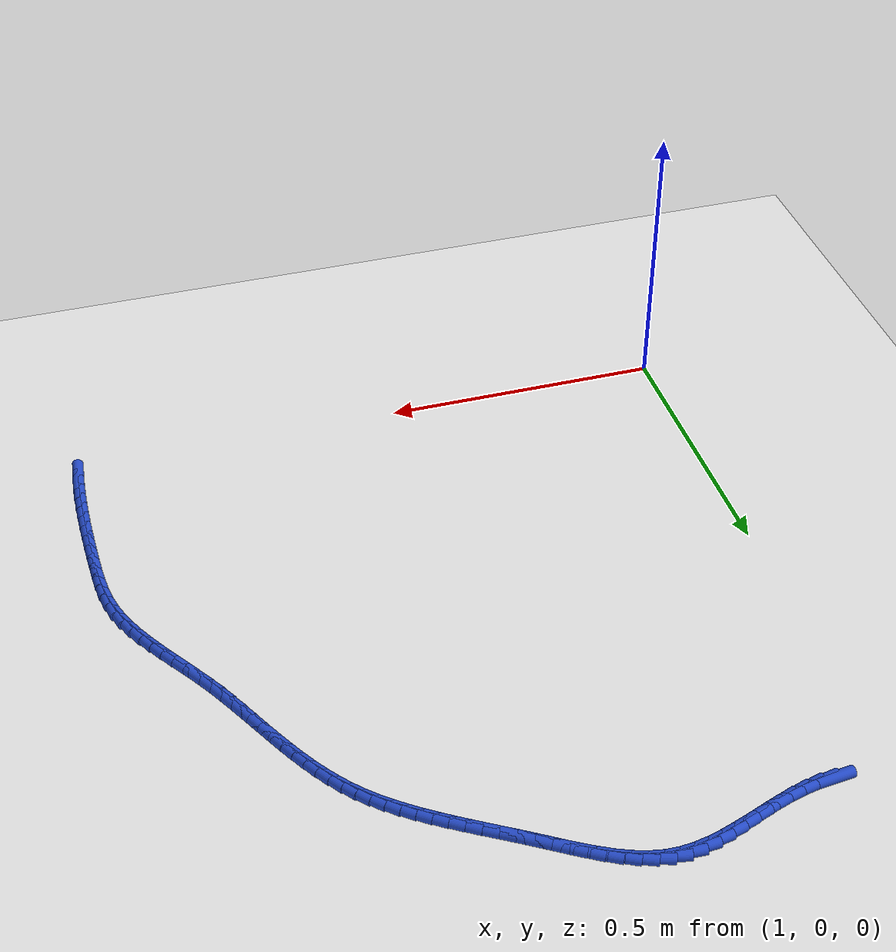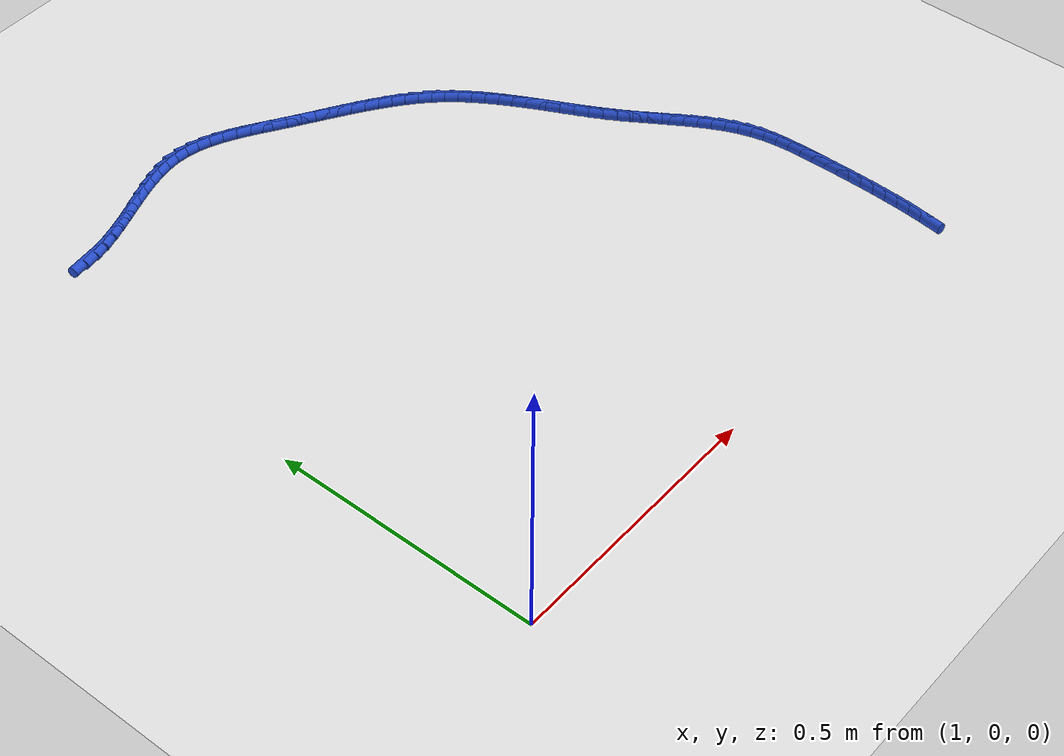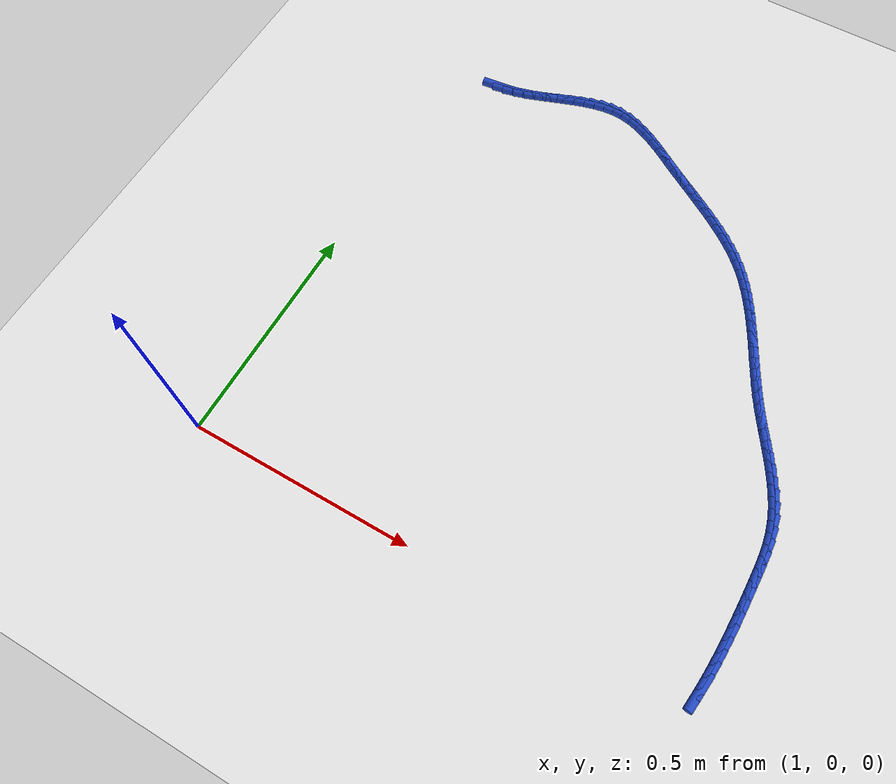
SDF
<sdf version="1.6">
 <world name="default">
  <model name="ground_plane">
   <static>1</static>
   <link name="link">
    <collision name="collision">
     <geometry><plane><normal>0 0 1</normal><size>100 100</size></plane></geometry>
     <surface><friction><ode><mu>100</mu><mu2>50</mu2></ode></friction></surface>
    </collision>
    <visual name="visual">
     <cast_shadows>0</cast_shadows>
     <geometry><plane><normal>0 0 1</normal><size>100 100</size></plane></geometry>
     <material>
      <script><uri>file://media/materials/scripts/gazebo.material</uri><name>Gazebo/WhiteGlow</name></script>
     </material>
    </visual>
   </link>
  </model>
  <model name="line">
   <link name="link_68">
    <pose>1.1064131514213038 1.0565954860298754 0.01 0 1.57 0.10568974941991985</pose>
    <collision name="collision">
     <geometry><cylinder><radius>0.01</radius><length>0.08</length></cylinder></geometry>
    </collision>
    <visual name="visual">
     <material>
      <script><name>Gazebo/Blue</name><uri>file://media/materials/scripts/gazebo.material</uri></script>
     </material>
     <geometry><cylinder><radius>0.01</radius><length>0.08</length></cylinder></geometry>
    </visual>
   </link>
   <link name="link_69">
    <pose>1.1314996799015065 1.0592567915400655 0.01 0 1.57 0.19799500992161104</pose>
    <collision name="collision">
     <geometry><cylinder><radius>0.01</radius><length>0.08</length></cylinder></geometry>
    </collision>
    <visual name="visual">
     <material>
      <script><name>Gazebo/Blue</name><uri>file://media/materials/scripts/gazebo.material</uri></script>
     </material>
     <geometry><cylinder><radius>0.01</radius><length>0.08</length></cylinder></geometry>
    </visual>
   </link>
   <link name="link_70">
    <pose>1.1565789983415005 1.064288292255868 0.01 0 1.57 0.26721346325326883</pose>
    <collision name="collision">
     <geometry><cylinder><radius>0.01</radius><length>0.08</length></cylinder></geometry>
    </collision>
    <visual name="visual">
     <material>
      <script><name>Gazebo/Blue</name><uri>file://media/materials/scripts/gazebo.material</uri></script>
     </material>
     <geometry><cylinder><radius>0.01</radius><length>0.08</length></cylinder></geometry>
    </visual>
   </link>
   <link name="link_71">
    <pose>1.1816277866555522 1.0711456602724558 0.01 0 1.57 0.31471692116318645</pose>
    <collision name="collision">
     <geometry><cylinder><radius>0.01</radius><length>0.08</length></cylinder></geometry>
    </collision>
    <visual name="visual">
     <material>
      <script><name>Gazebo/Blue</name><uri>file://media/materials/scripts/gazebo.material</uri></script>
     </material>
     <geometry><cylinder><radius>0.01</radius><length>0.08</length></cylinder></geometry>
    </visual>
   </link>
   <link name="link_72">
    <pose>1.2066225144554084 1.0792823524077817 0.01 0 1.57 0.34197339441924096</pose>
    <collision name="collision">
     <geometry><cylinder><radius>0.01</radius><length>0.08</length></cylinder></geometry>
    </collision>
    <visual name="visual">
     <material>
      <script><name>Gazebo/Blue</name><uri>file://media/materials/scripts/gazebo.material</uri></script>
     </material>
     <geometry><cylinder><radius>0.01</radius><length>0.08</length></cylinder></geometry>
    </visual>
   </link>
   <link name="link_73">
    <pose>1.2315396513528156 1.088151825479798 0.01 0 1.57 0.34989893899645813</pose>
    <collision name="collision">
     <geometry><cylinder><radius>0.01</radius><length>0.08</length></cylinder></geometry>
    </collision>
    <visual name="visual">
     <material>
      <script><name>Gazebo/Blue</name><uri>file://media/materials/scripts/gazebo.material</uri></script>
     </material>
     <geometry><cylinder><radius>0.01</radius><length>0.08</length></cylinder></geometry>
    </visual>
   </link>
   <link name="link_74">
    <pose>1.2563556669595213 1.0972075363064566 0.01 0 1.57 0.33860120946573485</pose>
    <collision name="collision">
     <geometry><cylinder><radius>0.01</radius><length>0.08</length></cylinder></geometry>
    </collision>
    <visual name="visual">
     <material>
      <script><name>Gazebo/Blue</name><uri>file://media/materials/scripts/gazebo.material</uri></script>
     </material>
     <geometry><cylinder><radius>0.01</radius><length>0.08</length></cylinder></geometry>
    </visual>
   </link>
   <link name="link_75">
    <pose>1.2810470308872715 1.1059029417057098 0.01 0 1.57 0.30728903577597855</pose>
    <collision name="collision">
     <geometry><cylinder><radius>0.01</radius><length>0.08</length></cylinder></geometry>
    </collision>
    <visual name="visual">
     <material>
      <script><name>Gazebo/Blue</name><uri>file://media/materials/scripts/gazebo.material</uri></script>
     </material>
     <geometry><cylinder><radius>0.01</radius><length>0.08</length></cylinder></geometry>
    </visual>
   </link>
   <link name="link_76">
    <pose>1.3055902127478136 1.1136914984955102 0.01 0 1.57 0.2543135957324487</pose>
    <collision name="collision">
     <geometry><cylinder><radius>0.01</radius><length>0.08</length></cylinder></geometry>
    </collision>
    <visual name="visual">
     <material>
      <script><name>Gazebo/Blue</name><uri>file://media/materials/scripts/gazebo.material</uri></script>
     </material>
     <geometry><cylinder><radius>0.01</radius><length>0.08</length></cylinder></geometry>
    </visual>
   </link>
   <link name="link_77">
    <pose>1.3299616821528941 1.1200266634938099 0.01 0 1.57 0.17743216011791985</pose>
    <collision name="collision">
     <geometry><cylinder><radius>0.01</radius><length>0.08</length></cylinder></geometry>
    </collision>
    <visual name="visual">
     <material>
      <script><name>Gazebo/Blue</name><uri>file://media/materials/scripts/gazebo.material</uri></script>
     </material>
     <geometry><cylinder><radius>0.01</radius><length>0.08</length></cylinder></geometry>
    </visual>
   </link>
   <link name="link_78">
    <pose>1.3541379087142602 1.1243618935185613 0.01 0 1.57 0.07452541052109034</pose>
    <collision name="collision">
     <geometry><cylinder><radius>0.01</radius><length>0.08</length></cylinder></geometry>
    </collision>
    <visual name="visual">
     <material>
      <script><name>Gazebo/Blue</name><uri>file://media/materials/scripts/gazebo.material</uri></script>
     </material>
     <geometry><cylinder><radius>0.01</radius><length>0.08</length></cylinder></geometry>
    </visual>
   </link>
   <link name="link_79">
    <pose>1.3780953620436582 1.1261506453877164 0.01 0 1.57 -0.05476572322008678</pose>
    <collision name="collision">
     <geometry><cylinder><radius>0.01</radius><length>0.08</length></cylinder></geometry>
    </collision>
    <visual name="visual">
     <material>
      <script><name>Gazebo/Blue</name><uri>file://media/materials/scripts/gazebo.material</uri></script>
     </material>
     <geometry><cylinder><radius>0.01</radius><length>0.08</length></cylinder></geometry>
    </visual>
   </link>
   <link name="link_80">
    <pose>1.4018107441570664 1.1248505552948713 0.01 0 1.57 -0.19263924343142996</pose>
    <collision name="collision">
     <geometry><cylinder><radius>0.01</radius><length>0.08</length></cylinder></geometry>
    </collision>
    <visual name="visual">
     <material>
      <script><name>Gazebo/Blue</name><uri>file://media/materials/scripts/gazebo.material</uri></script>
     </material>
     <geometry><cylinder><radius>0.01</radius><length>0.08</length></cylinder></geometry>
    </visual>
   </link>
   <link name="link_81">
    <pose>1.425280405855951 1.12027260780036 0.01 0 1.57 -0.3091863579149466</pose>
    <collision name="collision">
     <geometry><cylinder><radius>0.01</radius><length>0.08</length></cylinder></geometry>
    </collision>
    <visual name="visual">
     <material>
      <script><name>Gazebo/Blue</name><uri>file://media/materials/scripts/gazebo.material</uri></script>
     </material>
     <geometry><cylinder><radius>0.01</radius><length>0.08</length></cylinder></geometry>
    </visual>
   </link>
   <link name="link_82">
    <pose>1.4485349852382918 1.11284438334678 0.01 0 1.57 -0.40123347088696437</pose>
    <collision name="collision">
     <geometry><cylinder><radius>0.01</radius><length>0.08</length></cylinder></geometry>
    </collision>
    <visual name="visual">
     <material>
      <script><name>Gazebo/Blue</name><uri>file://media/materials/scripts/gazebo.material</uri></script>
     </material>
     <geometry><cylinder><radius>0.01</radius><length>0.08</length></cylinder></geometry>
    </visual>
   </link>
   <link name="link_83">
    <pose>1.4716085681186404 1.1030554634108602 0.01 0 1.57 -0.4704875750495877</pose>
    <collision name="collision">
     <geometry><cylinder><radius>0.01</radius><length>0.08</length></cylinder></geometry>
    </collision>
    <visual name="visual">
     <material>
      <script><name>Gazebo/Blue</name><uri>file://media/materials/scripts/gazebo.material</uri></script>
     </material>
     <geometry><cylinder><radius>0.01</radius><length>0.08</length></cylinder></geometry>
    </visual>
   </link>
   <link name="link_84">
    <pose>1.4945352403115502 1.091395429469329 0.01 0 1.57 -0.5193140339841332</pose>
    <collision name="collision">
     <geometry><cylinder><radius>0.01</radius><length>0.08</length></cylinder></geometry>
    </collision>
    <visual name="visual">
     <material>
      <script><name>Gazebo/Blue</name><uri>file://media/materials/scripts/gazebo.material</uri></script>
     </material>
     <geometry><cylinder><radius>0.01</radius><length>0.08</length></cylinder></geometry>
    </visual>
   </link>
   <link name="link_85">
    <pose>1.5173490876315732 1.0783538629989153 0.01 0 1.57 -0.5498242883551756</pose>
    <collision name="collision">
     <geometry><cylinder><radius>0.01</radius><length>0.08</length></cylinder></geometry>
    </collision>
    <visual name="visual">
     <material>
      <script><name>Gazebo/Blue</name><uri>file://media/materials/scripts/gazebo.material</uri></script>
     </material>
     <geometry><cylinder><radius>0.01</radius><length>0.08</length></cylinder></geometry>
    </visual>
   </link>
   <link name="link_86">
    <pose>1.5400841958932605 1.0644203454763468 0.01 0 1.57 -0.5634760803755144</pose>
    <collision name="collision">
     <geometry><cylinder><radius>0.01</radius><length>0.08</length></cylinder></geometry>
    </collision>
    <visual name="visual">
     <material>
      <script><name>Gazebo/Blue</name><uri>file://media/materials/scripts/gazebo.material</uri></script>
     </material>
     <geometry><cylinder><radius>0.01</radius><length>0.08</length></cylinder></geometry>
    </visual>
   </link>
   <link name="link_87">
    <pose>1.562774650911165 1.0500844583783522 0.01 0 1.57 -0.5611475797919578</pose>
    <collision name="collision">
     <geometry><cylinder><radius>0.01</radius><length>0.08</length></cylinder></geometry>
    </collision>
    <visual name="visual">
     <material>
      <script><name>Gazebo/Blue</name><uri>file://media/materials/scripts/gazebo.material</uri></script>
     </material>
     <geometry><cylinder><radius>0.01</radius><length>0.08</length></cylinder></geometry>
    </visual>
   </link>
   <link name="link_88">
    <pose>1.585453230572063 1.0358298520812346 0.01 0 1.57 -0.5518475403004007</pose>
    <collision name="collision">
     <geometry><cylinder><radius>0.01</radius><length>0.08</length></cylinder></geometry>
    </collision>
    <visual name="visual">
     <material>
      <script><name>Gazebo/Blue</name><uri>file://media/materials/scripts/gazebo.material</uri></script>
     </material>
     <geometry><cylinder><radius>0.01</radius><length>0.08</length></cylinder></geometry>
    </visual>
   </link>
   <link name="link_89">
    <pose>1.6080973258019273 1.0218890120018878 0.01 0 1.57 -0.5477656683675453</pose>
    <collision name="collision">
     <geometry><cylinder><radius>0.01</radius><length>0.08</length></cylinder></geometry>
    </collision>
    <visual name="visual">
     <material>
      <script><name>Gazebo/Blue</name><uri>file://media/materials/scripts/gazebo.material</uri></script>
     </material>
     <geometry><cylinder><radius>0.01</radius><length>0.08</length></cylinder></geometry>
    </visual>
   </link>
   <link name="link_90">
    <pose>1.6306096345871506 1.0081557111804023 0.01 0 1.57 -0.5499086033297413</pose>
    <collision name="collision">
     <geometry><cylinder><radius>0.01</radius><length>0.08</length></cylinder></geometry>
    </collision>
    <visual name="visual">
     <material>
      <script><name>Gazebo/Blue</name><uri>file://media/materials/scripts/gazebo.material</uri></script>
     </material>
     <geometry><cylinder><radius>0.01</radius><length>0.08</length></cylinder></geometry>
    </visual>
   </link>
   <link name="link_91">
    <pose>1.6528875772251006 0.9944997897576666 0.01 0 1.57 -0.5584544033914006</pose>
    <collision name="collision">
     <geometry><cylinder><radius>0.01</radius><length>0.08</length></cylinder></geometry>
    </collision>
    <visual name="visual">
     <material>
      <script><name>Gazebo/Blue</name><uri>file://media/materials/scripts/gazebo.material</uri></script>
     </material>
     <geometry><cylinder><radius>0.01</radius><length>0.08</length></cylinder></geometry>
    </visual>
   </link>
   <link name="link_92">
    <pose>1.6748285740131437 0.9807910878745673 0.01 0 1.57 -0.573613641233007</pose>
    <collision name="collision">
     <geometry><cylinder><radius>0.01</radius><length>0.08</length></cylinder></geometry>
    </collision>
    <visual name="visual">
     <material>
      <script><name>Gazebo/Blue</name><uri>file://media/materials/scripts/gazebo.material</uri></script>
     </material>
     <geometry><cylinder><radius>0.01</radius><length>0.08</length></cylinder></geometry>
    </visual>
   </link>
   <link name="link_93">
    <pose>1.6963300452486474 0.9668994456719924 0.01 0 1.57 -0.5956211832714225</pose>
    <collision name="collision">
     <geometry><cylinder><radius>0.01</radius><length>0.08</length></cylinder></geometry>
    </collision>
    <visual name="visual">
     <material>
      <script><name>Gazebo/Blue</name><uri>file://media/materials/scripts/gazebo.material</uri></script>
     </material>
     <geometry><cylinder><radius>0.01</radius><length>0.08</length></cylinder></geometry>
    </visual>
   </link>
   <link name="link_94">
    <pose>1.7172894112289787 0.9526947032908288 0.01 0 1.57 -0.6247175188271464</pose>
    <collision name="collision">
     <geometry><cylinder><radius>0.01</radius><length>0.08</length></cylinder></geometry>
    </collision>
    <visual name="visual">
     <material>
      <script><name>Gazebo/Blue</name><uri>file://media/materials/scripts/gazebo.material</uri></script>
     </material>
     <geometry><cylinder><radius>0.01</radius><length>0.08</length></cylinder></geometry>
    </visual>
   </link>
   <link name="link_95">
    <pose>1.7376040922515046 0.9380467008719645 0.01 0 1.57 -0.6611170616903118</pose>
    <collision name="collision">
     <geometry><cylinder><radius>0.01</radius><length>0.08</length></cylinder></geometry>
    </collision>
    <visual name="visual">
     <material>
      <script><name>Gazebo/Blue</name><uri>file://media/materials/scripts/gazebo.material</uri></script>
     </material>
     <geometry><cylinder><radius>0.01</radius><length>0.08</length></cylinder></geometry>
    </visual>
   </link>
   <link name="link_96">
    <pose>1.7571715086135913 0.9228252785562864 0.01 0 1.57 -0.7049611676609403</pose>
    <collision name="collision">
     <geometry><cylinder><radius>0.01</radius><length>0.08</length></cylinder></geometry>
    </collision>
    <visual name="visual">
     <material>
      <script><name>Gazebo/Blue</name><uri>file://media/materials/scripts/gazebo.material</uri></script>
     </material>
     <geometry><cylinder><radius>0.01</radius><length>0.08</length></cylinder></geometry>
    </visual>
   </link>
   <link name="link_97">
    <pose>1.7758890806126069 0.9069002764846823 0.01 0 1.57 -0.7562554066596883</pose>
    <collision name="collision">
     <geometry><cylinder><radius>0.01</radius><length>0.08</length></cylinder></geometry>
    </collision>
    <visual name="visual">
     <material>
      <script><name>Gazebo/Blue</name><uri>file://media/materials/scripts/gazebo.material</uri></script>
     </material>
     <geometry><cylinder><radius>0.01</radius><length>0.08</length></cylinder></geometry>
    </visual>
   </link>
   <link name="link_98">
    <pose>1.7936542285459176 0.8901415347980394 0.01 0 1.57 -0.814779897354857</pose>
    <collision name="collision">
     <geometry><cylinder><radius>0.01</radius><length>0.08</length></cylinder></geometry>
    </collision>
    <visual name="visual">
     <material>
      <script><name>Gazebo/Blue</name><uri>file://media/materials/scripts/gazebo.material</uri></script>
     </material>
     <geometry><cylinder><radius>0.01</radius><length>0.08</length></cylinder></geometry>
    </visual>
   </link>
   <link name="link_99">
    <pose>1.8103646284219508 0.8724191487381985 0.01 0 1.57 -0.8761969740815129</pose>
    <collision name="collision">
     <geometry><cylinder><radius>0.01</radius><length>0.08</length></cylinder></geometry>
    </collision>
    <visual name="visual">
     <material>
      <script><name>Gazebo/Blue</name><uri>file://media/materials/scripts/gazebo.material</uri></script>
     </material>
     <geometry><cylinder><radius>0.01</radius><length>0.08</length></cylinder></geometry>
    </visual>
   </link>
   <link name="link_100">
    <pose>1.8259846859515059 0.8536697840374315 0.01 0 1.57 -0.9310018270999173</pose>
    <collision name="collision">
     <geometry><cylinder><radius>0.01</radius><length>0.08</length></cylinder></geometry>
    </collision>
    <visual name="visual">
     <material>
      <script><name>Gazebo/Blue</name><uri>file://media/materials/scripts/gazebo.material</uri></script>
     </material>
     <geometry><cylinder><radius>0.01</radius><length>0.08</length></cylinder></geometry>
    </visual>
   </link>
   <link name="link_101">
    <pose>1.840634365112801 0.8339852935453603 0.01 0 1.57 -0.9777155027791795</pose>
    <collision name="collision">
     <geometry><cylinder><radius>0.01</radius><length>0.08</length></cylinder></geometry>
    </collision>
    <visual name="visual">
     <material>
      <script><name>Gazebo/Blue</name><uri>file://media/materials/scripts/gazebo.material</uri></script>
     </material>
     <geometry><cylinder><radius>0.01</radius><length>0.08</length></cylinder></geometry>
    </visual>
   </link>
   <link name="link_102">
    <pose>1.8544557529670542 0.8134796004106303 0.01 0 1.57 -1.0163748932251204</pose>
    <collision name="collision">
     <geometry><cylinder><radius>0.01</radius><length>0.08</length></cylinder></geometry>
    </collision>
    <visual name="visual">
     <material>
      <script><name>Gazebo/Blue</name><uri>file://media/materials/scripts/gazebo.material</uri></script>
     </material>
     <geometry><cylinder><radius>0.01</radius><length>0.08</length></cylinder></geometry>
    </visual>
   </link>
   <link name="link_103">
    <pose>1.8675909365754826 0.7922666277818858 0.01 0 1.57 -1.0471570872643141</pose>
    <collision name="collision">
     <geometry><cylinder><radius>0.01</radius><length>0.08</length></cylinder></geometry>
    </collision>
    <visual name="visual">
     <material>
      <script><name>Gazebo/Blue</name><uri>file://media/materials/scripts/gazebo.material</uri></script>
     </material>
     <geometry><cylinder><radius>0.01</radius><length>0.08</length></cylinder></geometry>
    </visual>
   </link>
   <link name="link_104">
    <pose>1.880182002999303 0.770460298807772 0.01 0 1.57 -1.0703033537982816</pose>
    <collision name="collision">
     <geometry><cylinder><radius>0.01</radius><length>0.08</length></cylinder></geometry>
    </collision>
    <visual name="visual">
     <material>
      <script><name>Gazebo/Blue</name><uri>file://media/materials/scripts/gazebo.material</uri></script>
     </material>
     <geometry><cylinder><radius>0.01</radius><length>0.08</length></cylinder></geometry>
    </visual>
   </link>
   <link name="link_105">
    <pose>1.8923710392997342 0.7481745366369343 0.01 0 1.57 -1.0860636074618608</pose>
    <collision name="collision">
     <geometry><cylinder><radius>0.01</radius><length>0.08</length></cylinder></geometry>
    </collision>
    <visual name="visual">
     <material>
      <script><name>Gazebo/Blue</name><uri>file://media/materials/scripts/gazebo.material</uri></script>
     </material>
     <geometry><cylinder><radius>0.01</radius><length>0.08</length></cylinder></geometry>
    </visual>
   </link>
   <link name="link_106">
    <pose>1.9043001325379918 0.7255232644180173 0.01 0 1.57 -1.0946597215266585</pose>
    <collision name="collision">
     <geometry><cylinder><radius>0.01</radius><length>0.08</length></cylinder></geometry>
    </collision>
    <visual name="visual">
     <material>
      <script><name>Gazebo/Blue</name><uri>file://media/materials/scripts/gazebo.material</uri></script>
     </material>
     <geometry><cylinder><radius>0.01</radius><length>0.08</length></cylinder></geometry>
    </visual>
   </link>
   <link name="link_107">
    <pose>1.916111369775294 0.7026204052996659 0.01 0 1.57 -1.0962642776472704</pose>
    <collision name="collision">
     <geometry><cylinder><radius>0.01</radius><length>0.08</length></cylinder></geometry>
    </collision>
    <visual name="visual">
     <material>
      <script><name>Gazebo/Blue</name><uri>file://media/materials/scripts/gazebo.material</uri></script>
     </material>
     <geometry><cylinder><radius>0.01</radius><length>0.08</length></cylinder></geometry>
    </visual>
   </link>
   <link name="link_108">
    <pose>1.9279468380728584 0.6795798824305255 0.01 0 1.57 -1.0909914398936862</pose>
    <collision name="collision">
     <geometry><cylinder><radius>0.01</radius><length>0.08</length></cylinder></geometry>
    </collision>
    <visual name="visual">
     <material>
      <script><name>Gazebo/Blue</name><uri>file://media/materials/scripts/gazebo.material</uri></script>
     </material>
     <geometry><cylinder><radius>0.01</radius><length>0.08</length></cylinder></geometry>
    </visual>
   </link>
   <link name="link_109">
    <pose>1.939948624491902 0.6565156189592408 0.01 0 1.57 -1.078897588605384</pose>
    <collision name="collision">
     <geometry><cylinder><radius>0.01</radius><length>0.08</length></cylinder></geometry>
    </collision>
    <visual name="visual">
     <material>
      <script><name>Gazebo/Blue</name><uri>file://media/materials/scripts/gazebo.material</uri></script>
     </material>
     <geometry><cylinder><radius>0.01</radius><length>0.08</length></cylinder></geometry>
    </visual>
   </link>
   <link name="link_110">
    <pose>1.952258816093642 0.6335415380344569 0.01 0 1.57 -1.0599905249338273</pose>
    <collision name="collision">
     <geometry><cylinder><radius>0.01</radius><length>0.08</length></cylinder></geometry>
    </collision>
    <visual name="visual">
     <material>
      <script><name>Gazebo/Blue</name><uri>file://media/materials/scripts/gazebo.material</uri></script>
     </material>
     <geometry><cylinder><radius>0.01</radius><length>0.08</length></cylinder></geometry>
    </visual>
   </link>
   <link name="link_111">
    <pose>1.965019499939296 0.6107715628048187 0.01 0 1.57 -1.034417067765522</pose>
    <collision name="collision">
     <geometry><cylinder><radius>0.01</radius><length>0.08</length></cylinder></geometry>
    </collision>
    <visual name="visual">
     <material>
      <script><name>Gazebo/Blue</name><uri>file://media/materials/scripts/gazebo.material</uri></script>
     </material>
     <geometry><cylinder><radius>0.01</radius><length>0.08</length></cylinder></geometry>
    </visual>
   </link>
   <link name="link_112">
    <pose>1.9783688208093322 0.5883175597801082 0.01 0 1.57 -1.0096142751444364</pose>
    <collision name="collision">
     <geometry><cylinder><radius>0.01</radius><length>0.08</length></cylinder></geometry>
    </collision>
    <visual name="visual">
     <material>
      <script><name>Gazebo/Blue</name><uri>file://media/materials/scripts/gazebo.material</uri></script>
     </material>
     <geometry><cylinder><radius>0.01</radius><length>0.08</length></cylinder></geometry>
    </visual>
   </link>
   <link name="link_113">
    <pose>1.9922713359585138 0.5662008370157039 0.01 0 1.57 -0.9957474599754311</pose>
    <collision name="collision">
     <geometry><cylinder><radius>0.01</radius><length>0.08</length></cylinder></geometry>
    </collision>
    <visual name="visual">
     <material>
      <script><name>Gazebo/Blue</name><uri>file://media/materials/scripts/gazebo.material</uri></script>
     </material>
     <geometry><cylinder><radius>0.01</radius><length>0.08</length></cylinder></geometry>
    </visual>
   </link>
   <link name="link_114">
    <pose>2.006453584070678 0.5443185312371872 0.01 0 1.57 -0.9935346305287671</pose>
    <collision name="collision">
     <geometry><cylinder><radius>0.01</radius><length>0.08</length></cylinder></geometry>
    </collision>
    <visual name="visual">
     <material>
      <script><name>Gazebo/Blue</name><uri>file://media/materials/scripts/gazebo.material</uri></script>
     </material>
     <geometry><cylinder><radius>0.01</radius><length>0.08</length></cylinder></geometry>
    </visual>
   </link>
   <link name="link_115">
    <pose>2.020624871469634 0.5225587892621181 0.01 0 1.57 -1.0031074963274993</pose>
    <collision name="collision">
     <geometry><cylinder><radius>0.01</radius><length>0.08</length></cylinder></geometry>
    </collision>
    <visual name="visual">
     <material>
      <script><name>Gazebo/Blue</name><uri>file://media/materials/scripts/gazebo.material</uri></script>
     </material>
     <geometry><cylinder><radius>0.01</radius><length>0.08</length></cylinder></geometry>
    </visual>
   </link>
   <link name="link_116">
    <pose>2.034494504479188 0.5008097579080559 0.01 0 1.57 -1.0247699111889594</pose>
    <collision name="collision">
     <geometry><cylinder><radius>0.01</radius><length>0.08</length></cylinder></geometry>
    </collision>
    <visual name="visual">
     <material>
      <script><name>Gazebo/Blue</name><uri>file://media/materials/scripts/gazebo.material</uri></script>
     </material>
     <geometry><cylinder><radius>0.01</radius><length>0.08</length></cylinder></geometry>
    </visual>
   </link>
   <link name="link_117">
    <pose>2.0477717894231477 0.47895958399255995 0.01 0 1.57 -1.0589679055048888</pose>
    <collision name="collision">
     <geometry><cylinder><radius>0.01</radius><length>0.08</length></cylinder></geometry>
    </collision>
    <visual name="visual">
     <material>
      <script><name>Gazebo/Blue</name><uri>file://media/materials/scripts/gazebo.material</uri></script>
     </material>
     <geometry><cylinder><radius>0.01</radius><length>0.08</length></cylinder></geometry>
    </visual>
   </link>
   <link name="link_118">
    <pose>2.060166032625321 0.45689641433318956 0.01 0 1.57 -1.1062022849932647</pose>
    <collision name="collision">
     <geometry><cylinder><radius>0.01</radius><length>0.08</length></cylinder></geometry>
    </collision>
    <visual name="visual">
     <material>
      <script><name>Gazebo/Blue</name><uri>file://media/materials/scripts/gazebo.material</uri></script>
     </material>
     <geometry><cylinder><radius>0.01</radius><length>0.08</length></cylinder></geometry>
    </visual>
   </link>
   <link name="link_119">
    <pose>2.071386540409515 0.4345083957475041 0.01 0 1.57 -1.1668652364826768</pose>
    <collision name="collision">
     <geometry><cylinder><radius>0.01</radius><length>0.08</length></cylinder></geometry>
    </collision>
    <visual name="visual">
     <material>
      <script><name>Gazebo/Blue</name><uri>file://media/materials/scripts/gazebo.material</uri></script>
     </material>
     <geometry><cylinder><radius>0.01</radius><length>0.08</length></cylinder></geometry>
    </visual>
   </link>
   <link name="link_120">
    <pose>2.0811426190995372 0.41168367505306275 0.01 0 1.57 -1.2409867372505772</pose>
    <collision name="collision">
     <geometry><cylinder><radius>0.01</radius><length>0.08</length></cylinder></geometry>
    </collision>
    <visual name="visual">
     <material>
      <script><name>Gazebo/Blue</name><uri>file://media/materials/scripts/gazebo.material</uri></script>
     </material>
     <geometry><cylinder><radius>0.01</radius><length>0.08</length></cylinder></geometry>
    </visual>
   </link>
   <link name="link_121">
    <pose>2.0891435750191953 0.388310399067425 0.01 0 1.57 -1.3276047397510324</pose>
    <collision name="collision">
     <geometry><cylinder><radius>0.01</radius><length>0.08</length></cylinder></geometry>
    </collision>
    <visual name="visual">
     <material>
      <script><name>Gazebo/Blue</name><uri>file://media/materials/scripts/gazebo.material</uri></script>
     </material>
     <geometry><cylinder><radius>0.01</radius><length>0.08</length></cylinder></geometry>
    </visual>
   </link>
   <link name="link_122">
    <pose>2.095105758024492 0.3642792298664726 0.01 0 1.57 -1.412518938207387</pose>
    <collision name="collision">
     <geometry><cylinder><radius>0.01</radius><length>0.08</length></cylinder></geometry>
    </collision>
    <visual name="visual">
     <material>
      <script><name>Gazebo/Blue</name><uri>file://media/materials/scripts/gazebo.material</uri></script>
     </material>
     <geometry><cylinder><radius>0.01</radius><length>0.08</length></cylinder></geometry>
    </visual>
   </link>
   <link name="link_123">
    <pose>2.0990467239961355 0.3395883907523857 0.01 0 1.57 -1.4780240352669756</pose>
    <collision name="collision">
     <geometry><cylinder><radius>0.01</radius><length>0.08</length></cylinder></geometry>
    </collision>
    <visual name="visual">
     <material>
      <script><name>Gazebo/Blue</name><uri>file://media/materials/scripts/gazebo.material</uri></script>
     </material>
     <geometry><cylinder><radius>0.01</radius><length>0.08</length></cylinder></geometry>
    </visual>
   </link>
   <link name="link_124">
    <pose>2.101391932174102 0.31438176806837015 0.01 0 1.57 -1.5237448030037808</pose>
    <collision name="collision">
     <geometry><cylinder><radius>0.01</radius><length>0.08</length></cylinder></geometry>
    </collision>
    <visual name="visual">
     <material>
      <script><name>Gazebo/Blue</name><uri>file://media/materials/scripts/gazebo.material</uri></script>
     </material>
     <geometry><cylinder><radius>0.01</radius><length>0.08</length></cylinder></geometry>
    </visual>
   </link>
   <link name="link_125">
    <pose>2.1025958418033626 0.2888136041128388 0.01 0 1.57 -1.5507384530407378</pose>
    <collision name="collision">
     <geometry><cylinder><radius>0.01</radius><length>0.08</length></cylinder></geometry>
    </collision>
    <visual name="visual">
     <material>
      <script><name>Gazebo/Blue</name><uri>file://media/materials/scripts/gazebo.material</uri></script>
     </material>
     <geometry><cylinder><radius>0.01</radius><length>0.08</length></cylinder></geometry>
    </visual>
   </link>
   <link name="link_126">
    <pose>2.1031129121288847 0.26303814118420404 0.01 0 1.57 -1.5610886864711861</pose>
    <collision name="collision">
     <geometry><cylinder><radius>0.01</radius><length>0.08</length></cylinder></geometry>
    </collision>
    <visual name="visual">
     <material>
      <script><name>Gazebo/Blue</name><uri>file://media/materials/scripts/gazebo.material</uri></script>
     </material>
     <geometry><cylinder><radius>0.01</radius><length>0.08</length></cylinder></geometry>
    </visual>
   </link>
   <link name="link_127">
    <pose>2.1033637421531273 0.23720053940192531 0.01 0 1.57 -1.5670395178014858</pose>
    <collision name="collision">
     <geometry><cylinder><radius>0.01</radius><length>0.08</length></cylinder></geometry>
    </collision>
    <visual name="visual">
     <material>
      <script><name>Gazebo/Blue</name><uri>file://media/materials/scripts/gazebo.material</uri></script>
     </material>
     <geometry><cylinder><radius>0.01</radius><length>0.08</length></cylinder></geometry>
    </visual>
   </link>
   <link name="link_128">
    <pose>2.103460808136083 0.21136331252267793 0.01 0 1.57 1.5665845113828072</pose>
    <collision name="collision">
     <geometry><cylinder><radius>0.01</radius><length>0.08</length></cylinder></geometry>
    </collision>
    <visual name="visual">
     <material>
      <script><name>Gazebo/Blue</name><uri>file://media/materials/scripts/gazebo.material</uri></script>
     </material>
     <geometry><cylinder><radius>0.01</radius><length>0.08</length></cylinder></geometry>
    </visual>
   </link>
   <link name="link_129">
    <pose>2.1033520648755744 0.18554484545909378 0.01 0 1.57 1.5565180918628916</pose>
    <collision name="collision">
     <geometry><cylinder><radius>0.01</radius><length>0.08</length></cylinder></geometry>
    </collision>
    <visual name="visual">
     <material>
      <script><name>Gazebo/Blue</name><uri>file://media/materials/scripts/gazebo.material</uri></script>
     </material>
     <geometry><cylinder><radius>0.01</radius><length>0.08</length></cylinder></geometry>
    </visual>
   </link>
   <link name="link_130">
    <pose>2.102983922163526 0.15976310871389537 0.01 0 1.57 1.5443271565696728</pose>
    <collision name="collision">
     <geometry><cylinder><radius>0.01</radius><length>0.08</length></cylinder></geometry>
    </collision>
    <visual name="visual">
     <material>
      <script><name>Gazebo/Blue</name><uri>file://media/materials/scripts/gazebo.material</uri></script>
     </material>
     <geometry><cylinder><radius>0.01</radius><length>0.08</length></cylinder></geometry>
    </visual>
   </link>
   <link name="link_131">
    <pose>2.102302789791864 0.13403607278980495 0.01 0 1.57 1.5299794772570257</pose>
    <collision name="collision">
     <geometry><cylinder><radius>0.01</radius><length>0.08</length></cylinder></geometry>
    </collision>
    <visual name="visual">
     <material>
      <script><name>Gazebo/Blue</name><uri>file://media/materials/scripts/gazebo.material</uri></script>
     </material>
     <geometry><cylinder><radius>0.01</radius><length>0.08</length></cylinder></geometry>
    </visual>
   </link>
   <link name="link_132">
    <pose>2.101255077552511 0.1083817081895449 0.01 0 1.57 1.5134387872671728</pose>
    <collision name="collision">
     <geometry><cylinder><radius>0.01</radius><length>0.08</length></cylinder></geometry>
    </collision>
    <visual name="visual">
     <material>
      <script><name>Gazebo/Blue</name><uri>file://media/materials/scripts/gazebo.material</uri></script>
     </material>
     <geometry><cylinder><radius>0.01</radius><length>0.08</length></cylinder></geometry>
    </visual>
   </link>
   <link name="link_133">
    <pose>2.099787195237396 0.08281798541583772 0.01 0 1.57 1.4946666210165325</pose>
    <collision name="collision">
     <geometry><cylinder><radius>0.01</radius><length>0.08</length></cylinder></geometry>
    </collision>
    <visual name="visual">
     <material>
      <script><name>Gazebo/Blue</name><uri>file://media/materials/scripts/gazebo.material</uri></script>
     </material>
     <geometry><cylinder><radius>0.01</radius><length>0.08</length></cylinder></geometry>
    </visual>
   </link>
   <link name="link_134">
    <pose>2.097845552638441 0.05736287497140602 0.01 0 1.57 1.4736245842423006</pose>
    <collision name="collision">
     <geometry><cylinder><radius>0.01</radius><length>0.08</length></cylinder></geometry>
    </collision>
    <visual name="visual">
     <material>
      <script><name>Gazebo/Blue</name><uri>file://media/materials/scripts/gazebo.material</uri></script>
     </material>
     <geometry><cylinder><radius>0.01</radius><length>0.08</length></cylinder></geometry>
    </visual>
   </link>
   <link name="link_135">
    <pose>2.0953765595475735 0.03203434735897154 0.01 0 1.57 1.4502771110231245</pose>
    <collision name="collision">
     <geometry><cylinder><radius>0.01</radius><length>0.08</length></cylinder></geometry>
    </collision>
    <visual name="visual">
     <material>
      <script><name>Gazebo/Blue</name><uri>file://media/materials/scripts/gazebo.material</uri></script>
     </material>
     <geometry><cylinder><radius>0.01</radius><length>0.08</length></cylinder></geometry>
    </visual>
   </link>
  </model>
 </world>
</sdf>
